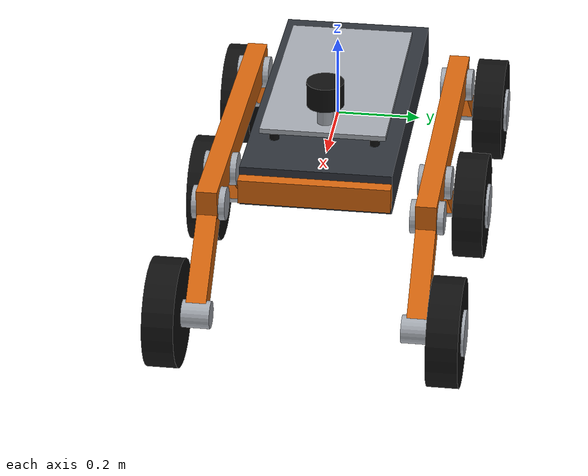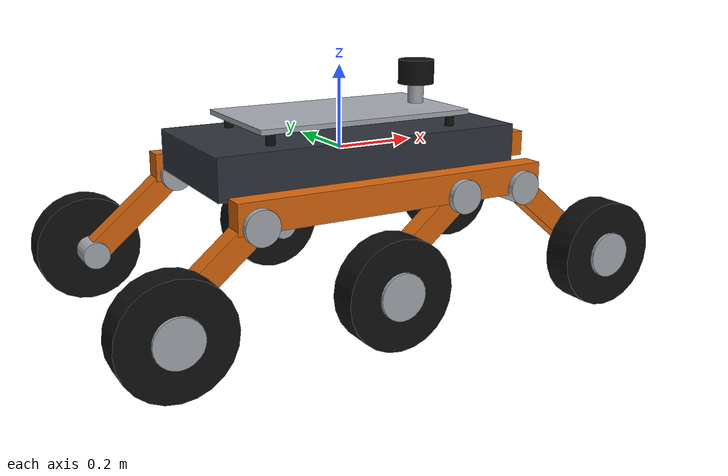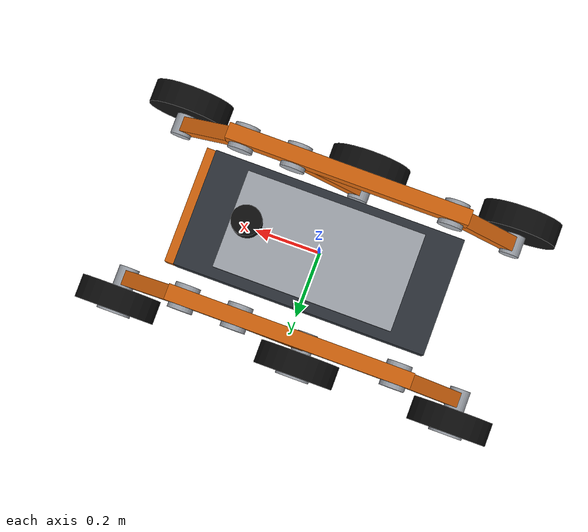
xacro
<?xml version="1.0"?>
<robot xmlns:xacro="http://www.ros.org/wiki/xacro" name="tarantula">
  <xacro:include filename="$(find tarantula_description)/urdf/tarantula_core_v3.urdf.xacro"/>

  <xacro:macro name="leg_gazebo" params="prefix">
    <gazebo reference="susp_${prefix}_joint">
      <sensor name="ft_${prefix}" type="force_torque">
        <update_rate>50</update_rate>
        <topic>ft/${prefix}</topic>
        <force_torque>
          <frame>parent</frame>
          <measure_direction>child_to_parent</measure_direction>
        </force_torque>
      </sensor>
    </gazebo>
    <gazebo reference="wheel_${prefix}_link">
      <mu1>0.9</mu1>
      <mu2>0.9</mu2>
      <slip1>0.0</slip1>
      <slip2>0.0</slip2>
      <kp>1000000.0</kp>
      <kd>10.0</kd>
    </gazebo>
    <gazebo reference="wheel_${prefix}_joint">
      <sensor name="ft_wheel_${prefix}" type="force_torque">
        <update_rate>50</update_rate>
        <topic>ft_wheel/${prefix}</topic>
        <force_torque>
          <frame>parent</frame>
          <measure_direction>child_to_parent</measure_direction>
        </force_torque>
      </sensor>
    </gazebo>
  </xacro:macro>

  <xacro:leg_gazebo prefix="fl"/>
  <xacro:leg_gazebo prefix="fr"/>
  <xacro:leg_gazebo prefix="ml"/>
  <xacro:leg_gazebo prefix="mr"/>
  <xacro:leg_gazebo prefix="rl"/>
  <xacro:leg_gazebo prefix="rr"/>

  <ros2_control name="GazeboSimSystem" type="system">
    <hardware><plugin>gz_ros2_control/GazeboSimSystem</plugin></hardware>
    <xacro:macro name="susp_iface" params="prefix">
      <joint name="susp_${prefix}_joint">
        <command_interface name="position"/>
        <state_interface name="position"/>
        <state_interface name="velocity"/>
      </joint>
    </xacro:macro>
    <xacro:macro name="wheel_iface" params="prefix">
      <joint name="wheel_${prefix}_joint">
        <command_interface name="velocity"/>
        <state_interface name="position"/>
        <state_interface name="velocity"/>
      </joint>
    </xacro:macro>

    <xacro:susp_iface prefix="fl"/><xacro:susp_iface prefix="fr"/>
    <xacro:susp_iface prefix="ml"/><xacro:susp_iface prefix="mr"/>
    <xacro:susp_iface prefix="rl"/><xacro:susp_iface prefix="rr"/>
    <xacro:wheel_iface prefix="fl"/><xacro:wheel_iface prefix="fr"/>
    <xacro:wheel_iface prefix="ml"/><xacro:wheel_iface prefix="mr"/>
    <xacro:wheel_iface prefix="rl"/><xacro:wheel_iface prefix="rr"/>
  </ros2_control>

  <gazebo>
    <plugin filename="gz_ros2_control-system" name="gz_ros2_control::GazeboSimROS2ControlPlugin">
      <parameters>$(find tarantula_bringup)/config/controllers_v2_position.yaml</parameters>
    </plugin>
    <plugin filename="gz-sim-odometry-publisher-system" name="ignition::gazebo::systems::OdometryPublisher">
      <odom_frame>tarantula/ground_truth_odom</odom_frame>
      <robot_base_frame>base_link</robot_base_frame>
      <odom_topic>ground_truth_odom</odom_topic>
      <odom_publish_frequency>50</odom_publish_frequency>
      <dimensions>3</dimensions>
    </plugin>
  </gazebo>

  <gazebo reference="imu_link">
    <sensor name="imu_sensor" type="imu">
      <always_on>true</always_on>
      <update_rate>100</update_rate>
      <topic>imu</topic>
    </sensor>
  </gazebo>

  <gazebo reference="lidar_link">
    <sensor name="lidar_sensor" type="gpu_lidar">
      <always_on>true</always_on>
      <update_rate>10</update_rate>
      <topic>scan</topic>
      <ray>
        <scan>
          <horizontal>
            <samples>360</samples>
            <min_angle>${-PI}</min_angle>
            <max_angle>${PI}</max_angle>
          </horizontal>
        </scan>
        <range><min>0.20</min><max>12.0</max><resolution>0.01</resolution></range>
      </ray>
    </sensor>
  </gazebo>
</robot>

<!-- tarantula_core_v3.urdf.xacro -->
<robot xmlns:xacro="http://www.ros.org/wiki/xacro" name="tarantula">
  <xacro:include filename="$(find tarantula_description)/urdf/tarantula_chassis_v2.xacro"/>

  <xacro:arg name="wheel_collision" default="sphere"/>

  <!-- v3 keeps the proven v2 topology but increases hip authority by giving
       each wheel arm more geometric leverage for active posture control. -->
  <xacro:property name="v2_arm_length" value="0.28"/>
  <xacro:property name="v2_arm_height" value="0.055"/>
  <xacro:property name="v2_wheel_lateral_offset" value="0.070"/>
  <xacro:tarantula_chassis_v2 prefix="" wheel_collision="$(arg wheel_collision)"/>

  <xacro:arg name="lidar" default="true"/>
  <xacro:if value="$(arg lidar)">
    <link name="lidar_link">
      <visual>
        <geometry><cylinder radius="0.045" length="0.06"/></geometry>
        <xacro:mat_tire/>
      </visual>
      <visual>
        <origin xyz="0 0 -0.06"/>
        <geometry><cylinder radius="0.02" length="0.06"/></geometry>
        <xacro:mat_hub/>
      </visual>
      <inertial>
        <mass value="0.2"/>
        <xacro:cylinder_inertia m="0.2" r="0.045" h="0.06"/>
      </inertial>
    </link>
    <joint name="lidar_joint" type="fixed">
      <parent link="payload_mount"/>
      <child link="lidar_link"/>
      <origin xyz="0.22 0 0.078"/>
    </joint>
  </xacro:if>
</robot>

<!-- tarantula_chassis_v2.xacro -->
<robot xmlns:xacro="http://www.ros.org/wiki/xacro">
  <xacro:include filename="$(find tarantula_description)/urdf/tarantula_common.xacro"/>

  <xacro:property name="v2_front_pivot_x" value="${pivot_x}"/>
  <xacro:property name="v2_mid_pivot_x" value="${pivot_mx}"/>
  <xacro:property name="v2_rear_pivot_x" value="${-pivot_x}"/>
  <xacro:property name="v2_arm_length" value="${arm_length}"/>
  <xacro:property name="v2_arm_width" value="0.048"/>
  <xacro:property name="v2_arm_height" value="0.060"/>
  <xacro:property name="v2_hip_hub_radius" value="0.040"/>
  <xacro:property name="v2_hip_hub_width" value="0.080"/>
  <xacro:property name="v2_wheel_hub_radius" value="0.055"/>
  <xacro:property name="v2_wheel_hub_extra_width" value="0.005"/>
  <xacro:property name="v2_wheel_lateral_offset" value="0.065"/>
  <xacro:property name="v2_wheel_axle_radius" value="0.033"/>
  <xacro:property name="v2_wheel_axle_width" value="0.070"/>

  <xacro:macro name="v2_leg" params="prefix id x side dir wheel_collision">
    <joint name="${prefix}susp_${id}_joint" type="revolute">
      <parent link="${prefix}base_link"/>
      <child link="${prefix}arm_${id}_link"/>
      <origin xyz="${x} ${side*pivot_y} ${pivot_z}" rpy="0 0 0"/>
      <axis xyz="0 1 0"/>
      <limit lower="-0.45" upper="0.45" effort="90" velocity="4"/>
      <dynamics damping="16.0" friction="0.10"/>
    </joint>

    <link name="${prefix}arm_${id}_link">
      <visual>
        <origin rpy="${PI/2} 0 0"/>
        <geometry><cylinder radius="${v2_hip_hub_radius}" length="${v2_hip_hub_width}"/></geometry>
        <xacro:mat_hub/>
      </visual>
      <visual>
        <origin xyz="${dir*v2_arm_length/2*cos(arm_angle)} 0 ${-v2_arm_length/2*sin(arm_angle)}"
                rpy="0 ${dir*arm_angle} 0"/>
        <geometry><box size="${v2_arm_length} ${v2_arm_width} ${v2_arm_height}"/></geometry>
        <xacro:mat_accent/>
      </visual>
      <visual>
        <origin xyz="${dir*v2_arm_length*cos(arm_angle)} 0 ${-v2_arm_length*sin(arm_angle)}"
                rpy="${PI/2} 0 0"/>
        <geometry><cylinder radius="${v2_wheel_axle_radius}" length="${v2_wheel_axle_width}"/></geometry>
        <xacro:mat_hub/>
      </visual>
      <collision>
        <origin xyz="${dir*v2_arm_length/2*cos(arm_angle)} 0 ${-v2_arm_length/2*sin(arm_angle)}"
                rpy="0 ${dir*arm_angle} 0"/>
        <geometry><box size="${v2_arm_length} ${v2_arm_width} ${v2_arm_height}"/></geometry>
      </collision>
      <inertial>
        <origin xyz="${dir*v2_arm_length/2*cos(arm_angle)} 0 ${-v2_arm_length/2*sin(arm_angle)}"/>
        <mass value="${arm_mass}"/>
        <xacro:box_inertia m="${arm_mass}" x="${v2_arm_length}" y="${v2_arm_width}" z="${v2_arm_height}"/>
      </inertial>
    </link>

    <joint name="${prefix}wheel_${id}_joint" type="continuous">
      <parent link="${prefix}arm_${id}_link"/>
      <child link="${prefix}wheel_${id}_link"/>
      <origin xyz="${dir*v2_arm_length*cos(arm_angle)} ${side*v2_wheel_lateral_offset} ${-v2_arm_length*sin(arm_angle)}"
              rpy="0 0 0"/>
      <axis xyz="0 1 0"/>
      <limit effort="38" velocity="30"/>
      <dynamics damping="0.08"/>
    </joint>

    <link name="${prefix}wheel_${id}_link">
      <visual>
        <origin rpy="${PI/2} 0 0"/>
        <geometry><cylinder radius="${wheel_radius}" length="${wheel_width}"/></geometry>
        <xacro:mat_tire/>
      </visual>
      <visual>
        <origin xyz="0 ${side*v2_wheel_hub_extra_width} 0" rpy="${PI/2} 0 0"/>
        <geometry><cylinder radius="${v2_wheel_hub_radius}" length="${wheel_width + v2_wheel_hub_extra_width}"/></geometry>
        <xacro:mat_hub/>
      </visual>
      <xacro:if value="${wheel_collision == 'sphere'}">
        <collision name="wheel_${id}_contact_collision">
          <geometry><sphere radius="${wheel_collision_radius}"/></geometry>
        </collision>
      </xacro:if>
      <xacro:if value="${wheel_collision == 'cylinder'}">
        <collision name="wheel_${id}_contact_collision">
          <origin rpy="${PI/2} 0 0"/>
          <geometry><cylinder radius="${wheel_radius}" length="${wheel_width}"/></geometry>
        </collision>
      </xacro:if>
      <inertial>
        <origin rpy="${PI/2} 0 0"/>
        <mass value="${wheel_mass}"/>
        <xacro:cylinder_inertia m="${wheel_mass}" r="${wheel_radius}" h="${wheel_width}"/>
      </inertial>
    </link>
  </xacro:macro>

  <xacro:macro name="tarantula_chassis_v2" params="prefix:='' wheel_collision:='sphere'">
    <link name="${prefix}base_link">
      <visual><geometry><box size="${body_length} ${body_width} ${body_height}"/></geometry><xacro:mat_body/></visual>
      <visual>
        <origin xyz="0 0 ${body_height/2 + deck_standoff + deck_thick/2}"/>
        <geometry><box size="0.55 0.30 ${deck_thick}"/></geometry>
        <xacro:mat_hub/>
      </visual>
      <xacro:deck_post x="0.24"  y="0.12"/>
      <xacro:deck_post x="0.24"  y="-0.12"/>
      <xacro:deck_post x="-0.24" y="0.12"/>
      <xacro:deck_post x="-0.24" y="-0.12"/>
      <visual>
        <origin xyz="${body_length/2 + 0.015} 0 0"/>
        <geometry><box size="0.03 ${body_width} 0.06"/></geometry>
        <xacro:mat_accent/>
      </visual>
      <visual>
        <origin xyz="0 ${pivot_y} ${pivot_z + 0.02}"/>
        <geometry><box size="${body_length} 0.05 0.07"/></geometry>
        <xacro:mat_accent/>
      </visual>
      <visual>
        <origin xyz="0 ${-pivot_y} ${pivot_z + 0.02}"/>
        <geometry><box size="${body_length} 0.05 0.07"/></geometry>
        <xacro:mat_accent/>
      </visual>
      <collision name="base_belly_collision">
        <origin xyz="0 0 ${belly_z}"/>
        <geometry><box size="${belly_length} ${belly_width} ${belly_height}"/></geometry>
      </collision>
      <inertial>
        <origin xyz="${body_com_x} ${body_com_y} ${body_com_z}"/>
        <mass value="${body_mass}"/>
        <xacro:box_inertia m="${body_mass}" x="${body_length}" y="${body_width}" z="${body_height}"/>
      </inertial>
    </link>

    <link name="${prefix}imu_link">
      <inertial><mass value="0.05"/><xacro:box_inertia m="0.05" x="0.03" y="0.03" z="0.01"/></inertial>
    </link>
    <joint name="${prefix}imu_joint" type="fixed">
      <parent link="${prefix}base_link"/>
      <child link="${prefix}imu_link"/>
      <origin xyz="0 0 ${body_height/2}"/>
    </joint>

    <link name="${prefix}payload_mount"/>
    <joint name="${prefix}payload_mount_joint" type="fixed">
      <parent link="${prefix}base_link"/>
      <child link="${prefix}payload_mount"/>
      <origin xyz="0 0 ${body_height/2 + deck_standoff + deck_thick}"/>
    </joint>

    <xacro:v2_leg prefix="${prefix}" id="fl" x="${v2_front_pivot_x}" side="1" dir="1" wheel_collision="${wheel_collision}"/>
    <xacro:v2_leg prefix="${prefix}" id="fr" x="${v2_front_pivot_x}" side="-1" dir="1" wheel_collision="${wheel_collision}"/>
    <xacro:v2_leg prefix="${prefix}" id="ml" x="${v2_mid_pivot_x}" side="1" dir="-1" wheel_collision="${wheel_collision}"/>
    <xacro:v2_leg prefix="${prefix}" id="mr" x="${v2_mid_pivot_x}" side="-1" dir="-1" wheel_collision="${wheel_collision}"/>
    <xacro:v2_leg prefix="${prefix}" id="rl" x="${v2_rear_pivot_x}" side="1" dir="-1" wheel_collision="${wheel_collision}"/>
    <xacro:v2_leg prefix="${prefix}" id="rr" x="${v2_rear_pivot_x}" side="-1" dir="-1" wheel_collision="${wheel_collision}"/>
  </xacro:macro>
</robot>

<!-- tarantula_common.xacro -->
<robot xmlns:xacro="http://www.ros.org/wiki/xacro">
  <xacro:property name="body_length" value="0.78"/>
  <xacro:property name="body_width" value="0.36"/>
  <xacro:property name="body_height" value="0.10"/>
  <xacro:property name="body_mass" value="18.0"/>
  <xacro:property name="body_com_x" value="0.0"/>
  <xacro:property name="body_com_y" value="0.0"/>
  <xacro:property name="body_com_z" value="-0.025"/>

  <xacro:property name="belly_length" value="0.70"/>
  <xacro:property name="belly_width" value="0.30"/>
  <xacro:property name="belly_height" value="0.08"/>
  <xacro:property name="belly_z" value="0.015"/>

  <xacro:property name="arm_length" value="0.22"/>
  <xacro:property name="arm_mass" value="0.8"/>
  <xacro:property name="arm_angle" value="0.698"/>

  <xacro:property name="wheel_radius" value="0.13"/>
  <xacro:property name="wheel_width" value="0.075"/>
  <xacro:property name="wheel_mass" value="1.7"/>
  <xacro:property name="wheel_collision_radius" value="${wheel_radius}"/>

  <xacro:property name="pivot_x" value="0.34"/>
  <xacro:property name="pivot_mx" value="0.17"/>
  <xacro:property name="pivot_y" value="0.26"/>
  <xacro:property name="pivot_z" value="-0.08"/>

  <xacro:property name="deck_standoff" value="0.03"/>
  <xacro:property name="deck_thick" value="0.012"/>

  <xacro:property name="PI" value="3.14159265"/>

  <xacro:macro name="box_inertia" params="m x y z">
    <inertia ixx="${m/12*(y*y+z*z)}" iyy="${m/12*(x*x+z*z)}" izz="${m/12*(x*x+y*y)}"
             ixy="0" ixz="0" iyz="0"/>
  </xacro:macro>

  <xacro:macro name="cylinder_inertia" params="m r h">
    <inertia ixx="${m/12*(3*r*r+h*h)}" iyy="${m/12*(3*r*r+h*h)}" izz="${m/2*r*r}"
             ixy="0" ixz="0" iyz="0"/>
  </xacro:macro>

  <xacro:macro name="deck_post" params="x y">
    <visual>
      <origin xyz="${x} ${y} ${body_height/2 + deck_standoff/2}"/>
      <geometry><cylinder radius="0.012" length="${deck_standoff}"/></geometry>
      <xacro:mat_tire/>
    </visual>
  </xacro:macro>

  <xacro:macro name="mat_body"><material name="m_body"><color rgba="0.18 0.20 0.23 1"/></material></xacro:macro>
  <xacro:macro name="mat_accent"><material name="m_accent"><color rgba="0.85 0.40 0.05 1"/></material></xacro:macro>
  <xacro:macro name="mat_tire"><material name="m_tire"><color rgba="0.06 0.06 0.06 1"/></material></xacro:macro>
  <xacro:macro name="mat_hub"><material name="m_hub"><color rgba="0.65 0.67 0.70 1"/></material></xacro:macro>
</robot>
